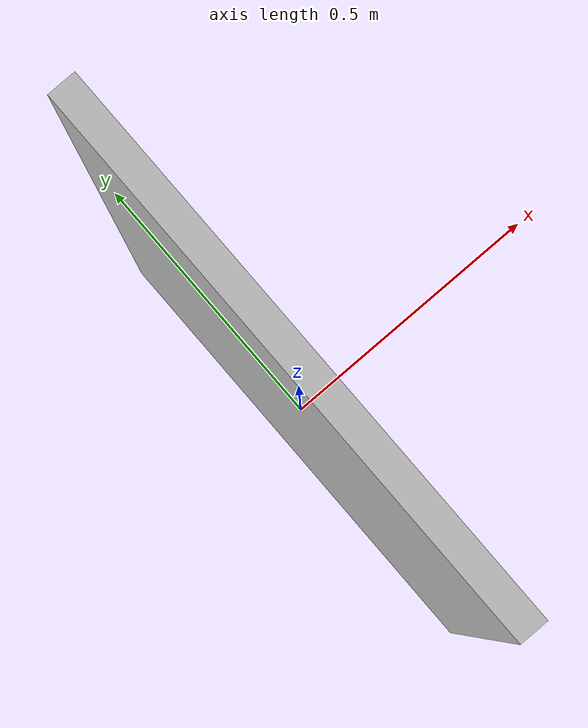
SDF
<?xml version="1.0" ?>
<sdf version='1.4'>
  <model name='table'>
      <link name="wallWithREEMphoto_body">
        <inertial>
          <mass>4.0</mass>
          <inertia>
            <ixx>1.0</ixx>
            <ixy>0.0</ixy>
            <ixz>0.0</ixz>
            <iyy>1.0</iyy>
            <iyz>0.0</iyz>
            <izz>1.0</izz>
          </inertia>
        </inertial>
        <collision name="collision">
          <geometry>
            <box>
              <size>0.05 1.0 2.0</size> <!-- Wall dimensions: thickness width length -->
            </box>
          </geometry>
        </collision>
        <visual name="visual">
          <geometry>
            <box>
              <size>0.05 1.0 2.0</size> <!-- Wall dimensions: thickness width length -->
            </box>
          </geometry>
          <material>
            <script>
	      <uri>model://wall_with_reem_photo/material/scripts</uri>
	      <uri>model://wall_with_reem_photo/material/textures</uri>
              <name>Custom/REEM_photo0</name>
            </script>
          </material>
        </visual>
      </link>
    </model>
</sdf>
